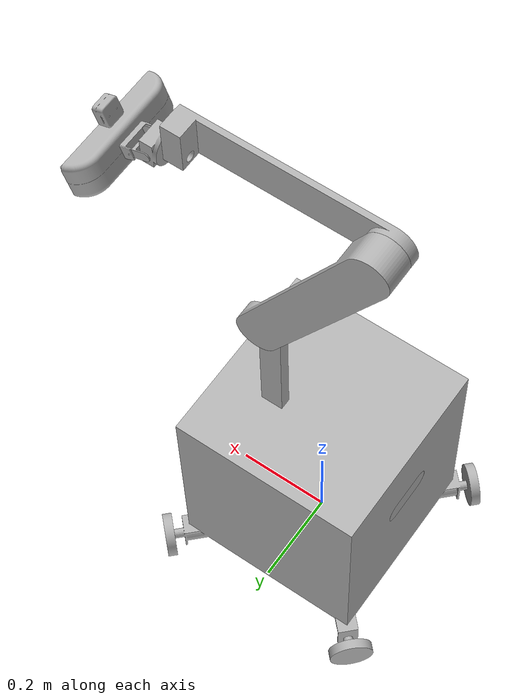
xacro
<?xml version="1.0" ?>
<robot name="homeplus_urdf" xmlns:xacro="http://www.ros.org/wiki/xacro">

<xacro:include filename="$(find homeplus_urdf_description)/urdf/materials.xacro" />
<xacro:include filename="$(find homeplus_urdf_description)/urdf/homeplus_urdf.trans" />
<xacro:include filename="$(find homeplus_urdf_description)/urdf/homeplus_urdf.gazebo" />

<link name="world"/>

<link name="base_x_link"/>
<joint name="base_x" type="prismatic">
  <parent link="world"/>
  <child link="base_x_link"/>
  <origin xyz="0 0 0" rpy="0 0 0"/>
  <axis xyz="1 0 0"/>
  <limit lower="-10" upper="10" effort="1000" velocity="1"/>
</joint>

<link name="base_y_link"/>
<joint name="base_y" type="prismatic">
  <parent link="base_x_link"/>
  <child link="base_y_link"/>
  <origin xyz="0 0 0" rpy="0 0 0"/>
  <axis xyz="0 1 0"/>
  <limit lower="-10" upper="10" effort="1000" velocity="1"/>
</joint>

<joint name="base_theta" type="continuous">
  <parent link="base_y_link"/>
  <child link="base_link"/>
  <origin xyz="0 0 0" rpy="0 0 0"/>
  <axis xyz="0 0 1"/>
  <limit effort="1000" velocity="1.0"/>
</joint>

<link name="base_link">
  <inertial>
    <origin xyz="0.0004146557429806276 0.00022451894424340232 0.22818176772484203" rpy="0 0 0"/>
    <mass value="606.0408305922668"/>
    <inertia ixx="19.841105" iyy="19.772146" izz="16.976923" ixy="-0.011119" iyz="-0.054187" ixz="-0.100076"/>
  </inertial>
  <visual>
    <origin xyz="0 0 0" rpy="0 0 0"/>
    <geometry>
      <mesh filename="package://homeplus_urdf_description/meshes/base_link.stl" scale="0.001 0.001 0.001"/>
    </geometry>
    <material name="silver"/>
  </visual>
  <collision>
    <origin xyz="0 0 0" rpy="0 0 0"/>
    <geometry>
      <mesh filename="package://homeplus_urdf_description/meshes/base_link.stl" scale="0.001 0.001 0.001"/>
    </geometry>
  </collision>
</link>

<link name="wheel_RR_1">
  <inertial>
    <origin xyz="-0.0070714058982290495 -0.007071405898229632 -2.1510571102112408e-16" rpy="0 0 0"/>
    <mass value="1.043674778634371"/>
    <inertia ixx="0.000846" iyy="0.000846" izz="0.000587" ixy="0.000259" iyz="0.0" ixz="0.0"/>
  </inertial>
  <visual>
    <origin xyz="0.228579 0.228579 0.036" rpy="0 0 0"/>
    <geometry>
      <mesh filename="package://homeplus_urdf_description/meshes/wheel_RR_1.stl" scale="0.001 0.001 0.001"/>
    </geometry>
    <material name="silver"/>
  </visual>
  <collision>
    <origin xyz="0.228579 0.228579 0.036" rpy="0 0 0"/>
    <geometry>
      <mesh filename="package://homeplus_urdf_description/meshes/wheel_RR_1.stl" scale="0.001 0.001 0.001"/>
    </geometry>
  </collision>
</link>

<link name="wheel_RL_1">
  <inertial>
    <origin xyz="-0.0070714058982287165 0.007071405898229105 -6.938893903907228e-18" rpy="0 0 0"/>
    <mass value="1.043674778634372"/>
    <inertia ixx="0.000846" iyy="0.000846" izz="0.000587" ixy="-0.000259" iyz="-0.0" ixz="0.0"/>
  </inertial>
  <visual>
    <origin xyz="0.228579 -0.228579 0.036" rpy="0 0 0"/>
    <geometry>
      <mesh filename="package://homeplus_urdf_description/meshes/wheel_RL_1.stl" scale="0.001 0.001 0.001"/>
    </geometry>
    <material name="silver"/>
  </visual>
  <collision>
    <origin xyz="0.228579 -0.228579 0.036" rpy="0 0 0"/>
    <geometry>
      <mesh filename="package://homeplus_urdf_description/meshes/wheel_RL_1.stl" scale="0.001 0.001 0.001"/>
    </geometry>
  </collision>
</link>

<link name="wheel_FL_1">
  <inertial>
    <origin xyz="0.007071405898228633 0.007071405898229244 6.938893903907228e-17" rpy="0 0 0"/>
    <mass value="1.0436747786343739"/>
    <inertia ixx="0.000846" iyy="0.000846" izz="0.000587" ixy="0.000259" iyz="0.0" ixz="0.0"/>
  </inertial>
  <visual>
    <origin xyz="-0.228579 -0.228579 0.036" rpy="0 0 0"/>
    <geometry>
      <mesh filename="package://homeplus_urdf_description/meshes/wheel_FL_1.stl" scale="0.001 0.001 0.001"/>
    </geometry>
    <material name="silver"/>
  </visual>
  <collision>
    <origin xyz="-0.228579 -0.228579 0.036" rpy="0 0 0"/>
    <geometry>
      <mesh filename="package://homeplus_urdf_description/meshes/wheel_FL_1.stl" scale="0.001 0.001 0.001"/>
    </geometry>
  </collision>
</link>

<link name="wheel_FR_1">
  <inertial>
    <origin xyz="0.007071405898228383 -0.007071405898228772 -1.5265566588595902e-16" rpy="0 0 0"/>
    <mass value="1.0436747786343759"/>
    <inertia ixx="0.000846" iyy="0.000846" izz="0.000587" ixy="-0.000259" iyz="-0.0" ixz="-0.0"/>
  </inertial>
  <visual>
    <origin xyz="-0.228579 0.228579 0.036" rpy="0 0 0"/>
    <geometry>
      <mesh filename="package://homeplus_urdf_description/meshes/wheel_FR_1.stl" scale="0.001 0.001 0.001"/>
    </geometry>
    <material name="silver"/>
  </visual>
  <collision>
    <origin xyz="-0.228579 0.228579 0.036" rpy="0 0 0"/>
    <geometry>
      <mesh filename="package://homeplus_urdf_description/meshes/wheel_FR_1.stl" scale="0.001 0.001 0.001"/>
    </geometry>
  </collision>
</link>

<link name="upper_arm_1">
  <inertial>
    <origin xyz="-0.1376394661573736 0.01689813688586892 0.23839854851065523" rpy="0 0 0"/>
    <mass value="9.374875429078665"/>
    <inertia ixx="0.219252" iyy="0.292307" izz="0.078487" ixy="-0.005264" iyz="0.009117" ixz="0.121906"/>
  </inertial>
  <visual>
    <origin xyz="-0.08213 -0.05647 -0.7767" rpy="0 0 0"/>
    <geometry>
      <mesh filename="package://homeplus_urdf_description/meshes/upper_arm_1.stl" scale="0.001 0.001 0.001"/>
    </geometry>
    <material name="silver"/>
  </visual>
  <collision>
    <origin xyz="-0.08213 -0.05647 -0.7767" rpy="0 0 0"/>
    <geometry>
      <mesh filename="package://homeplus_urdf_description/meshes/upper_arm_1.stl" scale="0.001 0.001 0.001"/>
    </geometry>
  </collision>
</link>

<link name="wrist_1">
  <inertial>
    <origin xyz="0.014644260697281974 0.007096885674173561 0.0008650732924451177" rpy="0 0 0"/>
    <mass value="0.8191117110424703"/>
    <inertia ixx="0.000508" iyy="0.000341" izz="0.000343" ixy="-3.6e-05" iyz="-3e-06" ixz="-7e-06"/>
  </inertial>
  <visual>
    <origin xyz="-0.279125 -0.04544 -1.132533" rpy="0 0 0"/>
    <geometry>
      <mesh filename="package://homeplus_urdf_description/meshes/wrist_1.stl" scale="0.001 0.001 0.001"/>
    </geometry>
    <material name="silver"/>
  </visual>
  <collision>
    <origin xyz="-0.279125 -0.04544 -1.132533" rpy="0 0 0"/>
    <geometry>
      <mesh filename="package://homeplus_urdf_description/meshes/wrist_1.stl" scale="0.001 0.001 0.001"/>
    </geometry>
  </collision>
</link>

<link name="palm_1">
  <inertial>
    <origin xyz="0.05846985442863173 -0.02600419842531295 -0.02175146057988253" rpy="0 0 0"/>
    <mass value="0.7780006510985586"/>
    <inertia ixx="0.00333" iyy="0.000729" izz="0.003148" ixy="0.0" iyz="0.0" ixz="-7.2e-05"/>
  </inertial>
  <visual>
    <origin xyz="-0.303625 -0.08264 -1.122708" rpy="0 0 0"/>
    <geometry>
      <mesh filename="package://homeplus_urdf_description/meshes/palm_1.stl" scale="0.001 0.001 0.001"/>
    </geometry>
    <material name="silver"/>
  </visual>
  <collision>
    <origin xyz="-0.303625 -0.08264 -1.122708" rpy="0 0 0"/>
    <geometry>
      <mesh filename="package://homeplus_urdf_description/meshes/palm_1.stl" scale="0.001 0.001 0.001"/>
    </geometry>
  </collision>
</link>

<link name="grasp_tcp"/>
<joint name="palm_to_grasp_tcp" type="fixed">
  <parent link="palm_1"/>
  <child link="grasp_tcp"/>
  <origin xyz="0.105 -0.026 -0.027" rpy="0 0.349066 0"/>
</joint>

<link name="press_tcp"/>
<joint name="grasp_tcp_to_press_tcp" type="fixed">
  <parent link="grasp_tcp"/>
  <child link="press_tcp"/>
  <origin xyz="0.07735 0.02253 -0.04204" rpy="0 0 0"/>
</joint>

<link name="FingerL_new_1">
  <inertial>
    <origin xyz="-0.009097242313835907 0.057476767816965396 -0.024889912187255447" rpy="0 0 0"/>
    <mass value="0.3095230195365785"/>
    <inertia ixx="0.0003" iyy="0.000134" izz="0.000238" ixy="-4.5e-05" iyz="1.6e-05" ixz="-2.6e-05"/>
  </inertial>
  <visual>
    <origin xyz="-0.383592 -0.06814 -1.120207" rpy="0 0 0"/>
    <geometry>
      <mesh filename="package://homeplus_urdf_description/meshes/FingerL_new_1.stl" scale="0.001 0.001 0.001"/>
    </geometry>
    <material name="silver"/>
  </visual>
  <collision>
    <origin xyz="-0.383592 -0.06814 -1.120207" rpy="0 0 0"/>
    <geometry>
      <mesh filename="package://homeplus_urdf_description/meshes/FingerL_new_1.stl" scale="0.001 0.001 0.001"/>
    </geometry>
  </collision>
</link>

<link name="FingerR_new_1">
  <inertial>
    <origin xyz="-0.010817401279445471 -0.05120865675835252 -0.02426382548061934" rpy="0 0 0"/>
    <mass value="0.25558652902018053"/>
    <inertia ixx="0.000189" iyy="7.3e-05" izz="0.000158" ixy="2.4e-05" iyz="-9e-06" ixz="-1.3e-05"/>
  </inertial>
  <visual>
    <origin xyz="-0.383592 -0.04514 -1.120207" rpy="0 0 0"/>
    <geometry>
      <mesh filename="package://homeplus_urdf_description/meshes/FingerR_new_1.stl" scale="0.001 0.001 0.001"/>
    </geometry>
    <material name="silver"/>
  </visual>
  <collision>
    <origin xyz="-0.383592 -0.04514 -1.120207" rpy="0 0 0"/>
    <geometry>
      <mesh filename="package://homeplus_urdf_description/meshes/FingerR_new_1.stl" scale="0.001 0.001 0.001"/>
    </geometry>
  </collision>
</link>

<link name="forearm_1">
  <inertial>
    <origin xyz="0.21893938454667589 -0.00943878407164618 0.0005977820735099115" rpy="0 0 0"/>
    <mass value="5.414595637933502"/>
    <inertia ixx="0.00432" iyy="0.132402" izz="0.129924" ixy="-0.004523" iyz="-6.7e-05" ixz="-0.000582"/>
  </inertial>
  <visual>
    <origin xyz="0.140215 -0.03428 -1.161813" rpy="0 0 0"/>
    <geometry>
      <mesh filename="package://homeplus_urdf_description/meshes/forearm_1.stl" scale="0.001 0.001 0.001"/>
    </geometry>
    <material name="silver"/>
  </visual>
  <collision>
    <origin xyz="0.140215 -0.03428 -1.161813" rpy="0 0 0"/>
    <geometry>
      <mesh filename="package://homeplus_urdf_description/meshes/forearm_1.stl" scale="0.001 0.001 0.001"/>
    </geometry>
  </collision>
</link>

<link name="hand_camera_link_1">
  <inertial>
    <origin xyz="0.010254157449565204 -8.270294277607643e-05 0.018705532554486703" rpy="0 0 0"/>
    <mass value="0.10460745071413999"/>
    <inertia ixx="2.8e-05" iyy="1.9e-05" izz="2e-05" ixy="-0.0" iyz="0.0" ixz="-3e-06"/>
  </inertial>
  <visual>
    <origin xyz="-0.387141 -0.056919 -1.129663" rpy="0 0 0"/>
    <geometry>
      <mesh filename="package://homeplus_urdf_description/meshes/hand_camera_link_1.stl" scale="0.001 0.001 0.001"/>
    </geometry>
    <material name="silver"/>
  </visual>
  <collision>
    <origin xyz="-0.387141 -0.056919 -1.129663" rpy="0 0 0"/>
    <geometry>
      <mesh filename="package://homeplus_urdf_description/meshes/hand_camera_link_1.stl" scale="0.001 0.001 0.001"/>
    </geometry>
  </collision>
</link>

<link name="front_camera_link_1">
  <inertial>
    <origin xyz="0.012699999999999906 2.4025276021235843e-17 5.551115123125783e-16" rpy="0 0 0"/>
    <mass value="1.1143784679008808"/>
    <inertia ixx="0.001453" iyy="0.000263" izz="0.00131" ixy="0.0" iyz="-0.0" ixz="-0.0"/>
  </inertial>
  <visual>
    <origin xyz="-0.17907 -0.0 -0.2794" rpy="0 0 0"/>
    <geometry>
      <mesh filename="package://homeplus_urdf_description/meshes/front_camera_link_1.stl" scale="0.001 0.001 0.001"/>
    </geometry>
    <material name="silver"/>
  </visual>
  <collision>
    <origin xyz="-0.17907 -0.0 -0.2794" rpy="0 0 0"/>
    <geometry>
      <mesh filename="package://homeplus_urdf_description/meshes/front_camera_link_1.stl" scale="0.001 0.001 0.001"/>
    </geometry>
  </collision>
</link>

<link name="rear_camera_link_1">
  <inertial>
    <origin xyz="-0.012699999999999906 3.2033701361647914e-17 6.106226635438361e-16" rpy="0 0 0"/>
    <mass value="1.1143784679008768"/>
    <inertia ixx="0.001453" iyy="0.000263" izz="0.00131" ixy="0.0" iyz="0.0" ixz="0.0"/>
  </inertial>
  <visual>
    <origin xyz="0.17907 -0.0 -0.2794" rpy="0 0 0"/>
    <geometry>
      <mesh filename="package://homeplus_urdf_description/meshes/rear_camera_link_1.stl" scale="0.001 0.001 0.001"/>
    </geometry>
    <material name="silver"/>
  </visual>
  <collision>
    <origin xyz="0.17907 -0.0 -0.2794" rpy="0 0 0"/>
    <geometry>
      <mesh filename="package://homeplus_urdf_description/meshes/rear_camera_link_1.stl" scale="0.001 0.001 0.001"/>
    </geometry>
  </collision>
</link>

<joint name="joint_wheel_RR" type="continuous">
  <origin xyz="-0.228579 -0.228579 -0.036" rpy="0 0 0"/>
  <parent link="base_link"/>
  <child link="wheel_RR_1"/>
  <axis xyz="-0.707107 -0.707107 -0.0"/>
</joint>

<joint name="joint_wheel_RL" type="continuous">
  <origin xyz="-0.228579 0.228579 -0.036" rpy="0 0 0"/>
  <parent link="base_link"/>
  <child link="wheel_RL_1"/>
  <axis xyz="-0.707107 0.707107 0.0"/>
</joint>

<joint name="joint_wheel_FL" type="continuous">
  <origin xyz="0.228579 0.228579 -0.036" rpy="0 0 0"/>
  <parent link="base_link"/>
  <child link="wheel_FL_1"/>
  <axis xyz="0.707107 0.707107 0.0"/>
</joint>

<joint name="joint_wheel_FR" type="continuous">
  <origin xyz="0.228579 -0.228579 -0.036" rpy="0 0 0"/>
  <parent link="base_link"/>
  <child link="wheel_FR_1"/>
  <axis xyz="0.707107 -0.707107 -0.0"/>
</joint>

<joint name="joint_shoulder" type="revolute">
  <origin xyz="0.08213 0.05647 0.7767" rpy="0 0 0"/>
  <parent link="base_link"/>
  <child link="upper_arm_1"/>
  <axis xyz="0.0 1.0 0.0"/>
  <limit upper="2.617994" lower="-0.523599" effort="100" velocity="100"/>
</joint>

<joint name="joint_wrist" type="revolute">
  <origin xyz="0.41934 0.01116 -0.02928" rpy="0 0 0"/>
  <parent link="forearm_1"/>
  <child link="wrist_1"/>
  <axis xyz="-1.0 -0.0 -0.0"/>
  <limit upper="1.570796" lower="-1.570796" effort="100" velocity="100"/>
</joint>

<joint name="joint_hand" type="revolute">
  <origin xyz="0.0245 0.0372 -0.009825" rpy="0 0 0"/>
  <parent link="wrist_1"/>
  <child link="palm_1"/>
  <axis xyz="-0.0 -1.0 0.0"/>
  <limit upper="1.396263" lower="-1.22173" effort="100" velocity="100"/>
</joint>

<joint name="joint_grip_L" type="revolute">
  <origin xyz="0.079967 -0.0145 -0.002501" rpy="0 0 0"/>
  <parent link="palm_1"/>
  <child link="FingerL_new_1"/>
  <axis xyz="-0.34202 0.0 -0.939693"/>
  <limit upper="1.570796" lower="0.0" effort="100" velocity="100"/>
</joint>

<joint name="joint_grip_R" type="revolute">
  <origin xyz="0.079967 -0.0375 -0.002501" rpy="0 0 0"/>
  <parent link="palm_1"/>
  <child link="FingerR_new_1"/>
  <axis xyz="0.34202 0.0 0.939693"/>
  <limit upper="1.570796" lower="0.0" effort="100" velocity="100"/>
  <mimic joint="joint_grip_L" multiplier="1" offset="0"/>
</joint>

<joint name="joint_elbow" type="revolute">
  <origin xyz="-0.222345 -0.02219 0.385113" rpy="0 0 0"/>
  <parent link="upper_arm_1"/>
  <child link="forearm_1"/>
  <axis xyz="0.0 -1.0 -0.0"/>
  <limit upper="2.530727" lower="-0.610865" effort="100" velocity="100"/>
</joint>

<joint name="hand_camera_to_lampshade" type="fixed">
  <origin xyz="0.083516 -0.025721 0.006955" rpy="0 0 0"/>
  <parent link="palm_1"/>
  <child link="hand_camera_link_1"/>
</joint>

<link name="hand_camera_link"/>
<joint name="hand_camera_link_alias" type="fixed">
  <origin xyz="0 0 0" rpy="0 0.354 0"/>
  <parent link="hand_camera_link_1"/>
  <child link="hand_camera_link"/>
</joint>

<link name="hand_camera_color_optical_frame"/>
<joint name="hand_camera_color_optical_frame_alias" type="fixed">
  <origin xyz="0 0 0" rpy="-1.570796 0 -1.570796"/>
  <parent link="hand_camera_link"/>
  <child link="hand_camera_color_optical_frame"/>
</joint>

<link name="hand_camera_depth_optical_frame"/>
<joint name="hand_camera_depth_optical_frame_alias" type="fixed">
  <origin xyz="0 0 0" rpy="-1.570796 0 -1.570796"/>
  <parent link="hand_camera_link"/>
  <child link="hand_camera_depth_optical_frame"/>
</joint>

<joint name="front_camera_to_base" type="fixed">
  <origin xyz="0.17907 0.0 0.2794" rpy="0 0 0"/>
  <parent link="base_link"/>
  <child link="front_camera_link_1"/>
</joint>

<link name="front_camera_link"/>
<joint name="front_camera_link_alias" type="fixed">
  <origin xyz="0 0 0" rpy="0 0 0"/>
  <parent link="front_camera_link_1"/>
  <child link="front_camera_link"/>
</joint>

<link name="front_camera_color_optical_frame"/>
<joint name="front_camera_color_optical_frame_alias" type="fixed">
  <origin xyz="0 0 0" rpy="-1.570796 0 -1.570796"/>
  <parent link="front_camera_link"/>
  <child link="front_camera_color_optical_frame"/>
</joint>

<link name="front_camera_depth_optical_frame"/>
<joint name="front_camera_depth_optical_frame_alias" type="fixed">
  <origin xyz="0 0 0" rpy="-1.570796 0 -1.570796"/>
  <parent link="front_camera_link"/>
  <child link="front_camera_depth_optical_frame"/>
</joint>

<joint name="rear_camera_to_base" type="fixed">
  <!-- Keep the exported camera mesh in the original rear body opening. -->
  <origin xyz="-0.17907 0.0 0.2794" rpy="0 0 0"/>
  <parent link="base_link"/>
  <child link="rear_camera_link_1"/>
</joint>

<link name="rear_camera_link"/>
<joint name="rear_camera_link_alias" type="fixed">
  <!-- The physical sensor moved to the left face while the legacy CAD mesh
       remains at the rear opening. This frame is the actual sensor pose. -->
  <origin xyz="0.17907 0.17907 0" rpy="0 0 1.5707963267948966"/>
  <parent link="rear_camera_link_1"/>
  <child link="rear_camera_link"/>
</joint>

<link name="rear_camera_color_optical_frame"/>
<joint name="rear_camera_color_optical_frame_alias" type="fixed">
  <origin xyz="0 0 0" rpy="-1.570796 0 -1.570796"/>
  <parent link="rear_camera_link"/>
  <child link="rear_camera_color_optical_frame"/>
</joint>

<link name="rear_camera_depth_optical_frame"/>
<joint name="rear_camera_depth_optical_frame_alias" type="fixed">
  <origin xyz="0 0 0" rpy="-1.570796 0 -1.570796"/>
  <parent link="rear_camera_link"/>
  <child link="rear_camera_depth_optical_frame"/>
</joint>

</robot>

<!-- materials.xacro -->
<robot name="homeplus_urdf" xmlns:xacro="http://www.ros.org/wiki/xacro" >

<material name="silver">
  <color rgba="0.700 0.700 0.700 1.000"/>
</material>

</robot>

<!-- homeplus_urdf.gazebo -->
<robot name="homeplus_urdf" xmlns:xacro="http://www.ros.org/wiki/xacro" >

<xacro:property name="body_color" value="Gazebo/Silver" />

<gazebo>
  <plugin name="control" filename="libgazebo_ros_control.so"/>
</gazebo>
<gazebo reference="base_link">
  <material>${body_color}</material>
  <mu1>0.2</mu1>
  <mu2>0.2</mu2>
  <selfCollide>true</selfCollide>
  <gravity>true</gravity>
</gazebo>

<gazebo reference="wheel_RR_1">
  <material>${body_color}</material>
  <mu1>0.2</mu1>
  <mu2>0.2</mu2>
  <selfCollide>true</selfCollide>
</gazebo>

<gazebo reference="wheel_RL_1">
  <material>${body_color}</material>
  <mu1>0.2</mu1>
  <mu2>0.2</mu2>
  <selfCollide>true</selfCollide>
</gazebo>

<gazebo reference="wheel_FL_1">
  <material>${body_color}</material>
  <mu1>0.2</mu1>
  <mu2>0.2</mu2>
  <selfCollide>true</selfCollide>
</gazebo>

<gazebo reference="wheel_FR_1">
  <material>${body_color}</material>
  <mu1>0.2</mu1>
  <mu2>0.2</mu2>
  <selfCollide>true</selfCollide>
</gazebo>

<gazebo reference="upper_arm_1">
  <material>${body_color}</material>
  <mu1>0.2</mu1>
  <mu2>0.2</mu2>
  <selfCollide>true</selfCollide>
</gazebo>

<gazebo reference="wrist_1">
  <material>${body_color}</material>
  <mu1>0.2</mu1>
  <mu2>0.2</mu2>
  <selfCollide>true</selfCollide>
</gazebo>

<gazebo reference="palm_1">
  <material>${body_color}</material>
  <mu1>0.2</mu1>
  <mu2>0.2</mu2>
  <selfCollide>true</selfCollide>
</gazebo>

<gazebo reference="FingerL_new_1">
  <material>${body_color}</material>
  <mu1>0.2</mu1>
  <mu2>0.2</mu2>
  <selfCollide>true</selfCollide>
</gazebo>

<gazebo reference="FingerR_new_1">
  <material>${body_color}</material>
  <mu1>0.2</mu1>
  <mu2>0.2</mu2>
  <selfCollide>true</selfCollide>
</gazebo>

<gazebo reference="forearm_1">
  <material>${body_color}</material>
  <mu1>0.2</mu1>
  <mu2>0.2</mu2>
  <selfCollide>true</selfCollide>
</gazebo>

<gazebo reference="hand_camera_link_1">
  <material>${body_color}</material>
  <mu1>0.2</mu1>
  <mu2>0.2</mu2>
  <selfCollide>true</selfCollide>
</gazebo>

<gazebo reference="front_camera_link_1">
  <material>${body_color}</material>
  <mu1>0.2</mu1>
  <mu2>0.2</mu2>
  <selfCollide>true</selfCollide>
</gazebo>

<gazebo reference="rear_camera_link_1">
  <material>${body_color}</material>
  <mu1>0.2</mu1>
  <mu2>0.2</mu2>
  <selfCollide>true</selfCollide>
</gazebo>

</robot>
